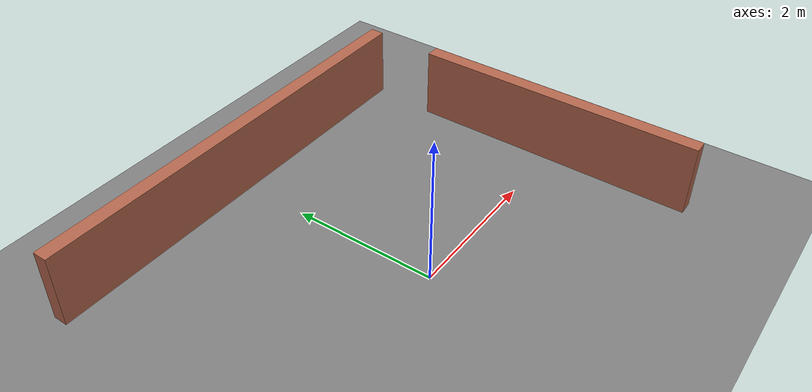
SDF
<?xml version="1.0" ?>
<sdf version="1.10">
  <world name="test_world">

    <!-- Reasonable, lightweight physics timestep (spec sections 14, 33). -->
    <physics name="default_physics" type="ignored">
      <max_step_size>0.004</max_step_size>
      <real_time_factor>1.0</real_time_factor>
      <real_time_update_rate>250</real_time_update_rate>
    </physics>

    <plugin filename="gz-sim-physics-system"
            name="gz::sim::systems::Physics"/>
    <plugin filename="gz-sim-user-commands-system"
            name="gz::sim::systems::UserCommands"/>
    <plugin filename="gz-sim-scene-broadcaster-system"
            name="gz::sim::systems::SceneBroadcaster"/>
    <plugin filename="gz-sim-contact-system"
            name="gz::sim::systems::Contact"/>

    <!-- Rendering-based LiDAR/camera and physics-based IMU use separate systems. -->
    <plugin filename="gz-sim-sensors-system"
            name="gz::sim::systems::Sensors">
      <render_engine>ogre2</render_engine>
    </plugin>
    <plugin filename="gz-sim-imu-system"
            name="gz::sim::systems::Imu"/>

    <gravity>0 0 -9.81</gravity>

    <!-- Lighting. -->
    <light type="directional" name="sun">
      <cast_shadows>true</cast_shadows>
      <pose>0 0 10 0 0 0</pose>
      <diffuse>1 1 1 1</diffuse>
      <specular>0.3 0.3 0.3 1</specular>
      <direction>-0.5 0.1 -0.9</direction>
    </light>

    <scene>
      <ambient>0.4 0.4 0.4 1</ambient>
      <background>0.7 0.7 0.8 1</background>
      <grid>false</grid>
    </scene>

    <!-- Ground plane: flat, high-friction, infinite collision. -->
    <model name="ground_plane">
      <static>true</static>
      <link name="link">
        <collision name="collision">
          <geometry>
            <plane>
              <normal>0 0 1</normal>
              <size>50 50</size>
            </plane>
          </geometry>
          <surface>
            <friction>
              <ode>
                <mu>1.0</mu>
                <mu2>1.0</mu2>
              </ode>
            </friction>
          </surface>
        </collision>
        <visual name="visual">
          <geometry>
            <plane>
              <normal>0 0 1</normal>
              <size>50 50</size>
            </plane>
          </geometry>
          <material>
            <ambient>0.3 0.3 0.3 1</ambient>
            <diffuse>0.5 0.5 0.5 1</diffuse>
            <specular>0.2 0.2 0.2 1</specular>
          </material>
        </visual>
      </link>
    </model>

    <!-- Two static walls for optional collision testing (spec section 11). -->
    <model name="wall_front">
      <static>true</static>
      <pose>3.0 0 0.5 0 0 0</pose>
      <link name="link">
        <collision name="collision">
          <geometry>
            <box><size>0.2 4.0 1.0</size></box>
          </geometry>
        </collision>
        <visual name="visual">
          <geometry>
            <box><size>0.2 4.0 1.0</size></box>
          </geometry>
          <material>
            <ambient>0.6 0.3 0.2 1</ambient>
            <diffuse>0.7 0.4 0.3 1</diffuse>
          </material>
        </visual>
      </link>
    </model>

    <model name="wall_left">
      <static>true</static>
      <pose>0 3.0 0.5 0 0 0</pose>
      <link name="link">
        <collision name="collision">
          <geometry>
            <box><size>6.0 0.2 1.0</size></box>
          </geometry>
        </collision>
        <visual name="visual">
          <geometry>
            <box><size>6.0 0.2 1.0</size></box>
          </geometry>
          <material>
            <ambient>0.6 0.3 0.2 1</ambient>
            <diffuse>0.7 0.4 0.3 1</diffuse>
          </material>
        </visual>
      </link>
    </model>

  </world>
</sdf>
